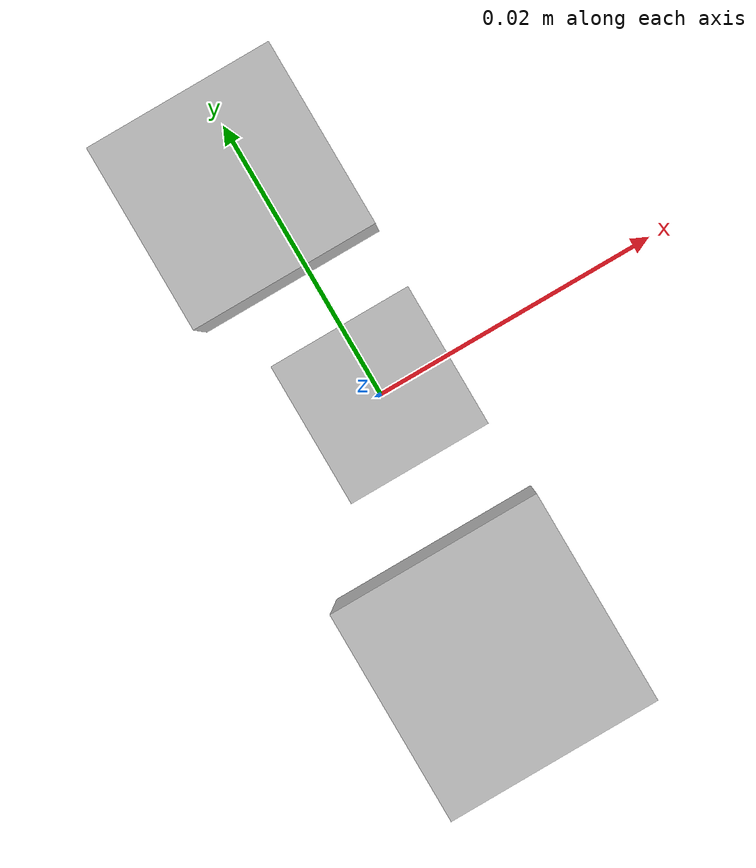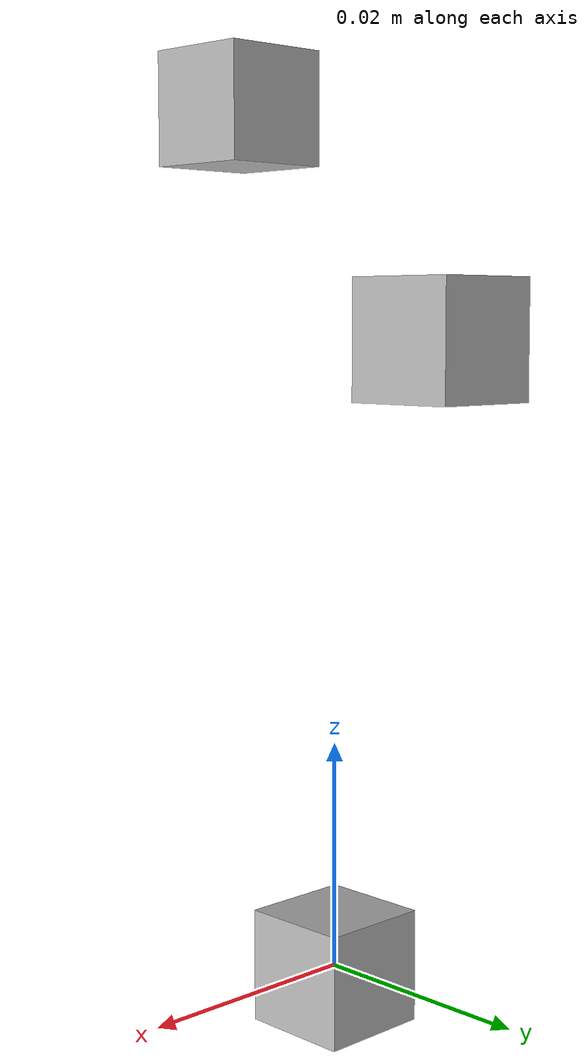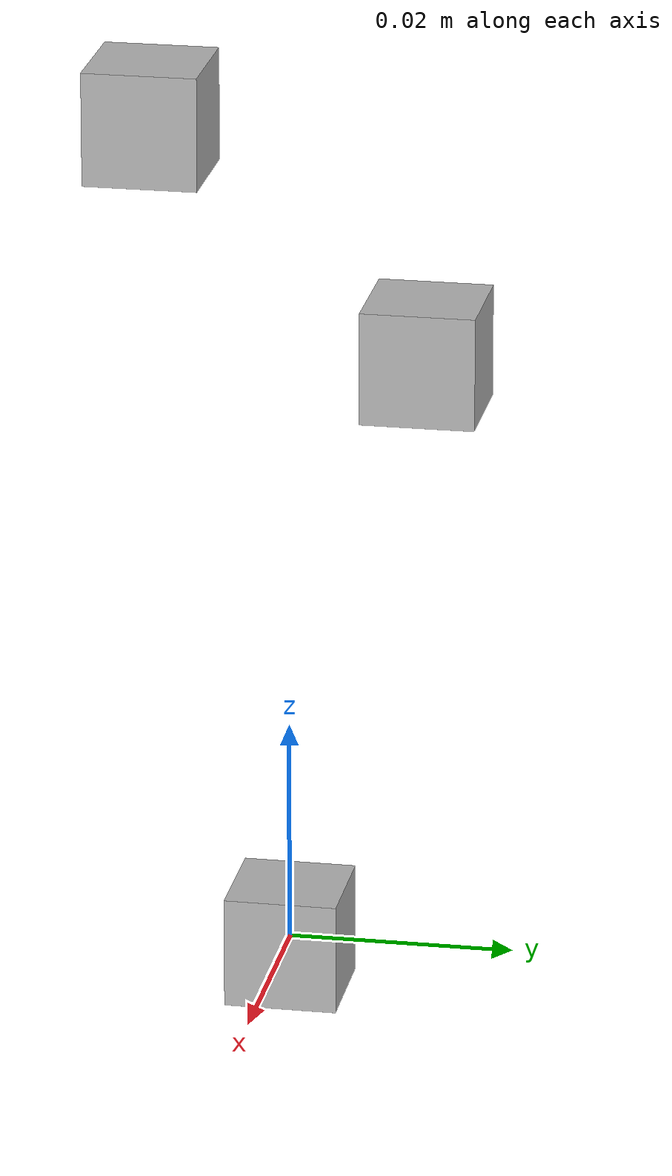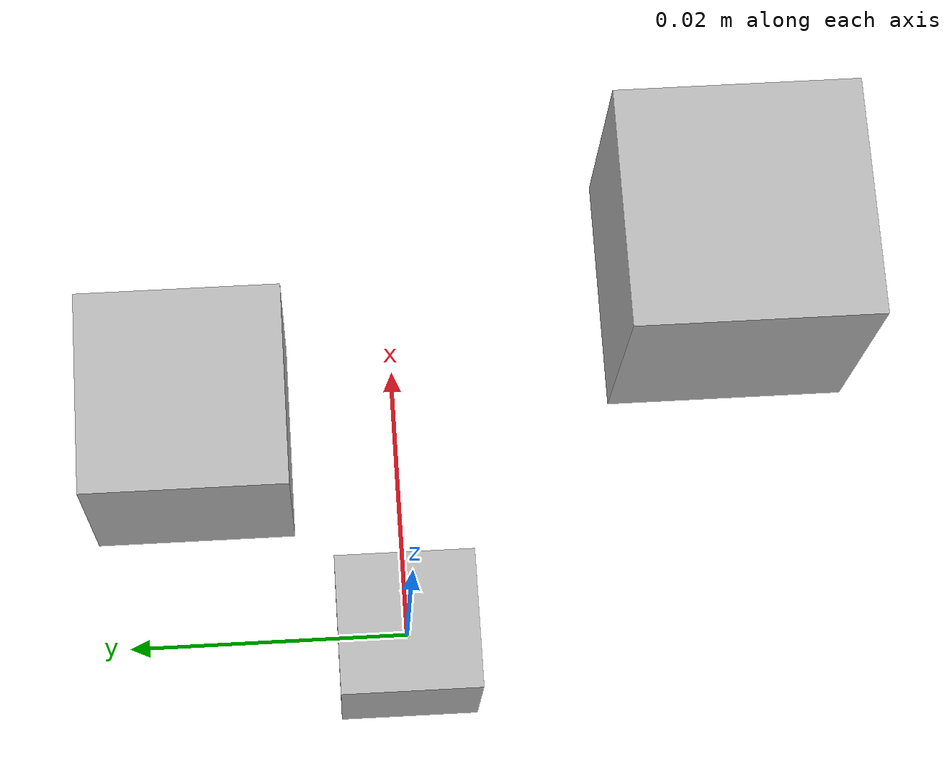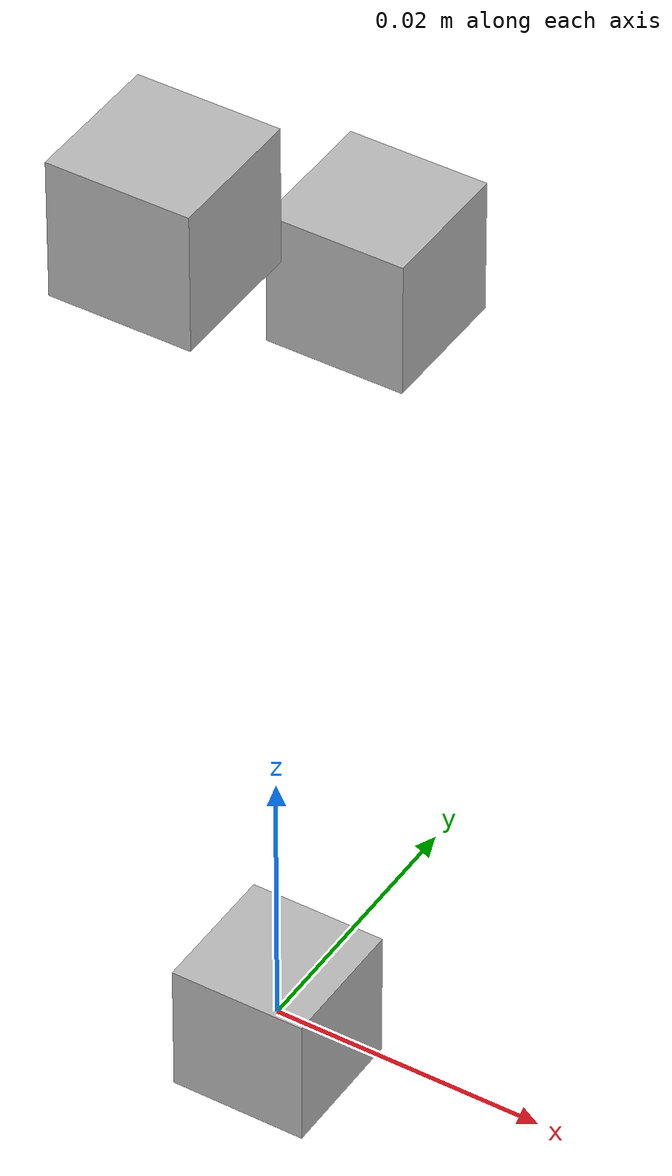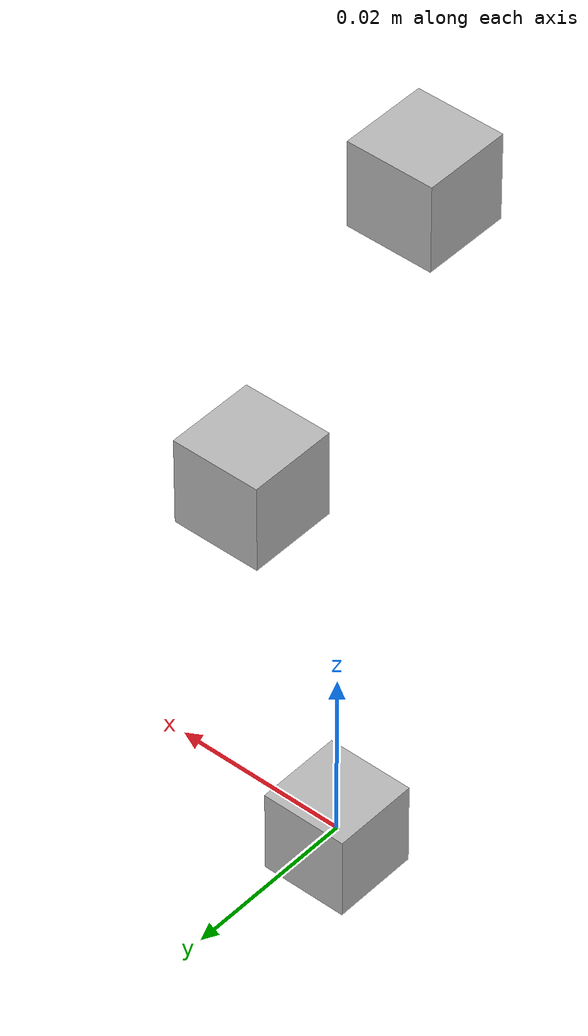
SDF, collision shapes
<?xml version="1.0" ?>
<sdf version='1.7'>
  <model name='akari_body'>
    <link name='akari_base'>
    <self_collide>1</self_collide>
      <inertial>
        <pose>0 0 0 0 -0 0</pose>
        <mass>50</mass>
        <inertia>
          <ixx>1.9e-05</ixx>
          <ixy>0</ixy>
          <ixz>0</ixz>
          <iyy>3.5e-05</iyy>
          <iyz>0</iyz>
          <izz>1.9e-05</izz>
        </inertia>
      </inertial>
      <collision name='base_link_collision'>
        <pose>0 0 0 0 -0 0</pose>
        <geometry>
          <box>
            <size>0.01 0.01 0.01</size>
          </box>
        </geometry>
      </collision>
      <visual name='base_link_visual'>
        <pose>0 0 0 0 -0 0</pose>
        <geometry>
          <mesh>
            <scale>1 1 1</scale>
            <uri>model://state_publisher/gazebomodel/akari_body.stl</uri>
          </mesh>
        </geometry>
      </visual>
    </link>

    <link name='servo_joint'>
    <self_collide>1</self_collide>
      <inertial>
        <pose>0.0 0.012 0.055 0 0 0</pose>
        <mass>0.05</mass>
        <inertia>
          <ixx>1.9e-05</ixx>
          <ixy>0</ixy>
          <ixz>0</ixz>
          <iyy>3.5e-05</iyy>
          <iyz>0</iyz>
          <izz>1.9e-05</izz>
        </inertia>
      </inertial>
      <collision name='hservo_joint_collision'>
        <pose>0.0 0.012 0.055 0 0 0</pose>
        <geometry>
          <box>
            <size>0.01 0.01 0.01</size>
          </box>
        </geometry>
      </collision>
      <visual name='servo_joint_visual'>
        <pose>0.0 0.012 0.055 0 0 0</pose>
        <geometry>
          <mesh>
            <scale>1 1 1</scale>
            <uri>model://state_publisher/gazebomodel/akari_servo.stl</uri>
          </mesh>
        </geometry>
      </visual>
    </link>

    <link name='head_joint'>
    <self_collide>1</self_collide>
      <inertial>
        <pose>0.0 -0.012 0.075 0 0 0</pose>
        <mass>0.05</mass>
        <inertia>
          <ixx>1.9e-05</ixx>
          <ixy>0</ixy>
          <ixz>0</ixz>
          <iyy>3.5e-05</iyy>
          <iyz>0</iyz>
          <izz>1.9e-05</izz>
        </inertia>
      </inertial>
      <collision name='head_joint_collision'>
        <pose>0.0 -0.012 0.075 0 0 0</pose>
        <geometry>
          <box>
            <size>0.01 0.01 0.01</size>
          </box>
        </geometry>
      </collision>
      <visual name='head_joint_visual'>
        <pose>0.0 -0.012 0.075 0 0 0</pose>
        <geometry>
          <mesh>
            <scale>1 1 1</scale>
            <uri>model://state_publisher/gazebomodel/akari_head.stl</uri>
          </mesh>
        </geometry>
      </visual>
    </link>

    <!-- Robot JOINTS -->
    <joint name="pan_joint" type="revolute">
        <parent> akari_base </parent>
        <child> servo_joint </child>
        <pose> 0.0 0.012 0.055 0 0 0 </pose>
        <axis>
        <xyz> 0 0 1</xyz>
        <limit>
          <lower>-2</lower>
          <upper>2</upper>
          <effort>5</effort>
          <velocity>3.14159274</velocity>
        </limit>
        </axis>
    </joint>

    <joint name="tilt_joint" type="revolute">
        <parent> servo_joint </parent>
        <child> head_joint </child>
        <pose> 0.0 -0.012 0.075 0 0 0</pose>
        <axis>
        <xyz> 1 0 0 </xyz>
        <limit>
          <lower>-0.5</lower>
          <upper>0.8</upper>
          <effort>5</effort>
          <velocity>3.14159274</velocity>
        </limit>
        </axis>
    </joint>
  </model>
</sdf>
